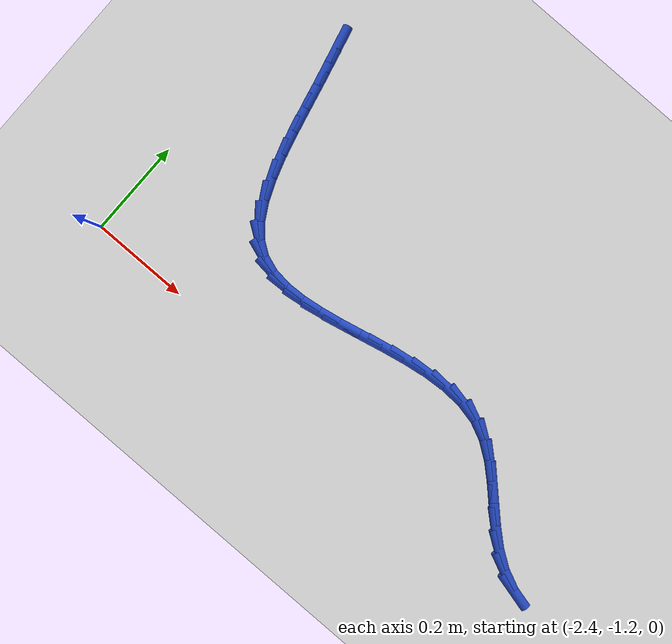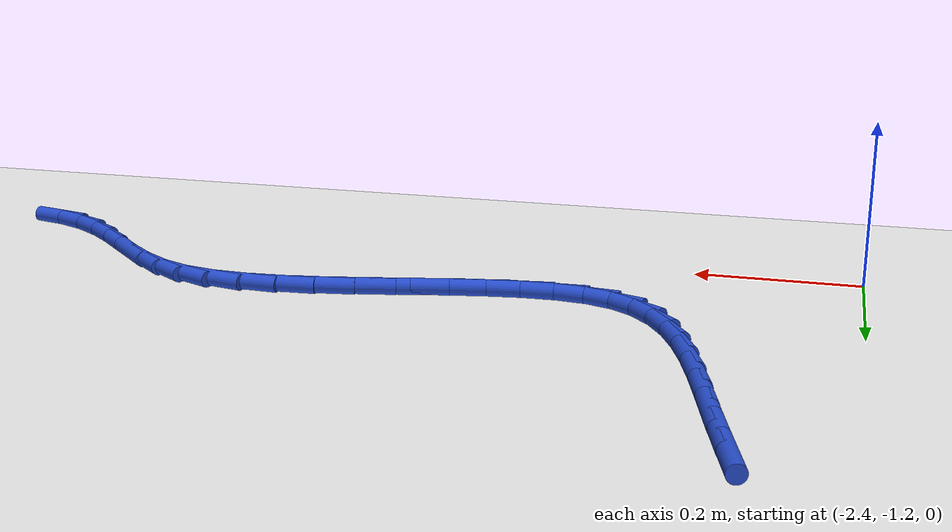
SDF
<sdf version="1.6">
 <world name="default">
  <model name="ground_plane">
   <static>1</static>
   <link name="link">
    <collision name="collision">
     <geometry><plane><normal>0 0 1</normal><size>100 100</size></plane></geometry>
     <surface><friction><ode><mu>100</mu><mu2>50</mu2></ode></friction></surface>
    </collision>
    <visual name="visual">
     <cast_shadows>0</cast_shadows>
     <geometry><plane><normal>0 0 1</normal><size>100 100</size></plane></geometry>
     <material>
      <script><uri>file://media/materials/scripts/gazebo.material</uri><name>Gazebo/WhiteGlow</name></script>
     </material>
    </visual>
   </link>
  </model>
  <model name="line">
   <link name="link_104">
    <pose>-2.280956479653316 -0.6336706878231295 0.01 0 1.57 -1.330989758760254</pose>
    <collision name="collision">
     <geometry><cylinder><radius>0.01</radius><length>0.08</length></cylinder></geometry>
    </collision>
    <visual name="visual">
     <material>
      <script><name>Gazebo/Blue</name><uri>file://media/materials/scripts/gazebo.material</uri></script>
     </material>
     <geometry><cylinder><radius>0.01</radius><length>0.08</length></cylinder></geometry>
    </visual>
   </link>
   <link name="link_105">
    <pose>-2.269371612398746 -0.681050291412001 0.01 0 1.57 -1.3387917648245278</pose>
    <collision name="collision">
     <geometry><cylinder><radius>0.01</radius><length>0.08</length></cylinder></geometry>
    </collision>
    <visual name="visual">
     <material>
      <script><name>Gazebo/Blue</name><uri>file://media/materials/scripts/gazebo.material</uri></script>
     </material>
     <geometry><cylinder><radius>0.01</radius><length>0.08</length></cylinder></geometry>
    </visual>
   </link>
   <link name="link_106">
    <pose>-2.258001896406491 -0.7291742774976275 0.01 0 1.57 -1.3463048233892345</pose>
    <collision name="collision">
     <geometry><cylinder><radius>0.01</radius><length>0.08</length></cylinder></geometry>
    </collision>
    <visual name="visual">
     <material>
      <script><name>Gazebo/Blue</name><uri>file://media/materials/scripts/gazebo.material</uri></script>
     </material>
     <geometry><cylinder><radius>0.01</radius><length>0.08</length></cylinder></geometry>
    </visual>
   </link>
   <link name="link_107">
    <pose>-2.2468799708586453 -0.7778819546220764 0.01 0 1.57 -1.338593225642721</pose>
    <collision name="collision">
     <geometry><cylinder><radius>0.01</radius><length>0.08</length></cylinder></geometry>
    </collision>
    <visual name="visual">
     <material>
      <script><name>Gazebo/Blue</name><uri>file://media/materials/scripts/gazebo.material</uri></script>
     </material>
     <geometry><cylinder><radius>0.01</radius><length>0.08</length></cylinder></geometry>
    </visual>
   </link>
   <link name="link_108">
    <pose>-2.235462562097918 -0.8261649660813665 0.01 0 1.57 -1.3106265633122132</pose>
    <collision name="collision">
     <geometry><cylinder><radius>0.01</radius><length>0.08</length></cylinder></geometry>
    </collision>
    <visual name="visual">
     <material>
      <script><name>Gazebo/Blue</name><uri>file://media/materials/scripts/gazebo.material</uri></script>
     </material>
     <geometry><cylinder><radius>0.01</radius><length>0.08</length></cylinder></geometry>
    </visual>
   </link>
   <link name="link_109">
    <pose>-2.2230515933239285 -0.8727871060328964 0.01 0 1.57 -1.2588008203436436</pose>
    <collision name="collision">
     <geometry><cylinder><radius>0.01</radius><length>0.08</length></cylinder></geometry>
    </collision>
    <visual name="visual">
     <material>
      <script><name>Gazebo/Blue</name><uri>file://media/materials/scripts/gazebo.material</uri></script>
     </material>
     <geometry><cylinder><radius>0.01</radius><length>0.08</length></cylinder></geometry>
    </visual>
   </link>
   <link name="link_110">
    <pose>-2.2089489856989513 -0.9165121656353641 0.01 0 1.57 -1.1760965838683635</pose>
    <collision name="collision">
     <geometry><cylinder><radius>0.01</radius><length>0.08</length></cylinder></geometry>
    </collision>
    <visual name="visual">
     <material>
      <script><name>Gazebo/Blue</name><uri>file://media/materials/scripts/gazebo.material</uri></script>
     </material>
     <geometry><cylinder><radius>0.01</radius><length>0.08</length></cylinder></geometry>
    </visual>
   </link>
   <link name="link_111">
    <pose>-2.192456660385258 -0.9561039360474705 0.01 0 1.57 -1.0511098662197789</pose>
    <collision name="collision">
     <geometry><cylinder><radius>0.01</radius><length>0.08</length></cylinder></geometry>
    </collision>
    <visual name="visual">
     <material>
      <script><name>Gazebo/Blue</name><uri>file://media/materials/scripts/gazebo.material</uri></script>
     </material>
     <geometry><cylinder><radius>0.01</radius><length>0.08</length></cylinder></geometry>
    </visual>
   </link>
   <link name="link_112">
    <pose>-2.172876538545122 -0.9903262084279151 0.01 0 1.57 -0.8685787707717372</pose>
    <collision name="collision">
     <geometry><cylinder><radius>0.01</radius><length>0.08</length></cylinder></geometry>
    </collision>
    <visual name="visual">
     <material>
      <script><name>Gazebo/Blue</name><uri>file://media/materials/scripts/gazebo.material</uri></script>
     </material>
     <geometry><cylinder><radius>0.01</radius><length>0.08</length></cylinder></geometry>
    </visual>
   </link>
   <link name="link_113">
    <pose>-2.149510541340815 -1.017942773935398 0.01 0 1.57 -0.6175638595653127</pose>
    <collision name="collision">
     <geometry><cylinder><radius>0.01</radius><length>0.08</length></cylinder></geometry>
    </collision>
    <visual name="visual">
     <material>
      <script><name>Gazebo/Blue</name><uri>file://media/materials/scripts/gazebo.material</uri></script>
     </material>
     <geometry><cylinder><radius>0.01</radius><length>0.08</length></cylinder></geometry>
    </visual>
   </link>
   <link name="link_114">
    <pose>-2.1216626920767205 -1.0377213642871062 0.01 0 1.57 -0.3378877770017698</pose>
    <collision name="collision">
     <geometry><cylinder><radius>0.01</radius><length>0.08</length></cylinder></geometry>
    </collision>
    <visual name="visual">
     <material>
      <script><name>Gazebo/Blue</name><uri>file://media/materials/scripts/gazebo.material</uri></script>
     </material>
     <geometry><cylinder><radius>0.01</radius><length>0.08</length></cylinder></geometry>
    </visual>
   </link>
   <link name="link_115">
    <pose>-2.089039378438921 -1.0491839610542466 0.01 0 1.57 -0.11662721067635441</pose>
    <collision name="collision">
     <geometry><cylinder><radius>0.01</radius><length>0.08</length></cylinder></geometry>
    </collision>
    <visual name="visual">
     <material>
      <script><name>Gazebo/Blue</name><uri>file://media/materials/scripts/gazebo.material</uri></script>
     </material>
     <geometry><cylinder><radius>0.01</radius><length>0.08</length></cylinder></geometry>
    </visual>
   </link>
   <link name="link_116">
    <pose>-2.052224334593791 -1.0534971706425698 0.01 0 1.57 0.03602853137515747</pose>
    <collision name="collision">
     <geometry><cylinder><radius>0.01</radius><length>0.08</length></cylinder></geometry>
    </collision>
    <visual name="visual">
     <material>
      <script><name>Gazebo/Blue</name><uri>file://media/materials/scripts/gazebo.material</uri></script>
     </material>
     <geometry><cylinder><radius>0.01</radius><length>0.08</length></cylinder></geometry>
    </visual>
   </link>
   <link name="link_117">
    <pose>-2.0119169095692424 -1.0520443246363054 0.01 0 1.57 0.13457626433097916</pose>
    <collision name="collision">
     <geometry><cylinder><radius>0.01</radius><length>0.08</length></cylinder></geometry>
    </collision>
    <visual name="visual">
     <material>
      <script><name>Gazebo/Blue</name><uri>file://media/materials/scripts/gazebo.material</uri></script>
     </material>
     <geometry><cylinder><radius>0.01</radius><length>0.08</length></cylinder></geometry>
    </visual>
   </link>
   <link name="link_118">
    <pose>-1.9688164523931833 -1.046208754619682 0.01 0 1.57 0.19305443082614746</pose>
    <collision name="collision">
     <geometry><cylinder><radius>0.01</radius><length>0.08</length></cylinder></geometry>
    </collision>
    <visual name="visual">
     <material>
      <script><name>Gazebo/Blue</name><uri>file://media/materials/scripts/gazebo.material</uri></script>
     </material>
     <geometry><cylinder><radius>0.01</radius><length>0.08</length></cylinder></geometry>
    </visual>
   </link>
   <link name="link_119">
    <pose>-1.9236223120935274 -1.03737379217693 0.01 0 1.57 0.22067317796100505</pose>
    <collision name="collision">
     <geometry><cylinder><radius>0.01</radius><length>0.08</length></cylinder></geometry>
    </collision>
    <visual name="visual">
     <material>
      <script><name>Gazebo/Blue</name><uri>file://media/materials/scripts/gazebo.material</uri></script>
     </material>
     <geometry><cylinder><radius>0.01</radius><length>0.08</length></cylinder></geometry>
    </visual>
   </link>
   <link name="link_120">
    <pose>-1.8770338376981832 -1.0269227688922773 0.01 0 1.57 0.2222195860648605</pose>
    <collision name="collision">
     <geometry><cylinder><radius>0.01</radius><length>0.08</length></cylinder></geometry>
    </collision>
    <visual name="visual">
     <material>
      <script><name>Gazebo/Blue</name><uri>file://media/materials/scripts/gazebo.material</uri></script>
     </material>
     <geometry><cylinder><radius>0.01</radius><length>0.08</length></cylinder></geometry>
    </visual>
   </link>
   <link name="link_121">
    <pose>-1.8297503782350637 -1.016239016349954 0.01 0 1.57 0.1989677853399161</pose>
    <collision name="collision">
     <geometry><cylinder><radius>0.01</radius><length>0.08</length></cylinder></geometry>
    </collision>
    <visual name="visual">
     <material>
      <script><name>Gazebo/Blue</name><uri>file://media/materials/scripts/gazebo.material</uri></script>
     </material>
     <geometry><cylinder><radius>0.01</radius><length>0.08</length></cylinder></geometry>
    </visual>
   </link>
   <link name="link_122">
    <pose>-1.7824712827320792 -1.0067058661341894 0.01 0 1.57 0.1491609996956223</pose>
    <collision name="collision">
     <geometry><cylinder><radius>0.01</radius><length>0.08</length></cylinder></geometry>
    </collision>
    <visual name="visual">
     <material>
      <script><name>Gazebo/Blue</name><uri>file://media/materials/scripts/gazebo.material</uri></script>
     </material>
     <geometry><cylinder><radius>0.01</radius><length>0.08</length></cylinder></geometry>
    </visual>
   </link>
   <link name="link_123">
    <pose>-1.7358959002171412 -0.9997066498292128 0.01 0 1.57 0.06812096591878085</pose>
    <collision name="collision">
     <geometry><cylinder><radius>0.01</radius><length>0.08</length></cylinder></geometry>
    </collision>
    <visual name="visual">
     <material>
      <script><name>Gazebo/Blue</name><uri>file://media/materials/scripts/gazebo.material</uri></script>
     </material>
     <geometry><cylinder><radius>0.01</radius><length>0.08</length></cylinder></geometry>
    </visual>
   </link>
   <link name="link_124">
    <pose>-1.6907235797181601 -0.9966246990192529 0.01 0 1.57 -0.051467183981384834</pose>
    <collision name="collision">
     <geometry><cylinder><radius>0.01</radius><length>0.08</length></cylinder></geometry>
    </collision>
    <visual name="visual">
     <material>
      <script><name>Gazebo/Blue</name><uri>file://media/materials/scripts/gazebo.material</uri></script>
     </material>
     <geometry><cylinder><radius>0.01</radius><length>0.08</length></cylinder></geometry>
    </visual>
   </link>
   <link name="link_125">
    <pose>-1.647653670263047 -0.9988433452885391 0.01 0 1.57 -0.21758240164894757</pose>
    <collision name="collision">
     <geometry><cylinder><radius>0.01</radius><length>0.08</length></cylinder></geometry>
    </collision>
    <visual name="visual">
     <material>
      <script><name>Gazebo/Blue</name><uri>file://media/materials/scripts/gazebo.material</uri></script>
     </material>
     <geometry><cylinder><radius>0.01</radius><length>0.08</length></cylinder></geometry>
    </visual>
   </link>
   <link name="link_126">
    <pose>-1.6073855208797125 -1.0077459202213013 0.01 0 1.57 -0.4271077871699465</pose>
    <collision name="collision">
     <geometry><cylinder><radius>0.01</radius><length>0.08</length></cylinder></geometry>
    </collision>
    <visual name="visual">
     <material>
      <script><name>Gazebo/Blue</name><uri>file://media/materials/scripts/gazebo.material</uri></script>
     </material>
     <geometry><cylinder><radius>0.01</radius><length>0.08</length></cylinder></geometry>
    </visual>
   </link>
   <link name="link_127">
    <pose>-1.570524352853285 -1.0245223633551537 0.01 0 1.57 -0.6104562734050282</pose>
    <collision name="collision">
     <geometry><cylinder><radius>0.01</radius><length>0.08</length></cylinder></geometry>
    </collision>
    <visual name="visual">
     <material>
      <script><name>Gazebo/Blue</name><uri>file://media/materials/scripts/gazebo.material</uri></script>
     </material>
     <geometry><cylinder><radius>0.01</radius><length>0.08</length></cylinder></geometry>
    </visual>
   </link>
   <link name="link_128">
    <pose>-1.5366372618827264 -1.0482297124304867 0.01 0 1.57 -0.7255330549057654</pose>
    <collision name="collision">
     <geometry><cylinder><radius>0.01</radius><length>0.08</length></cylinder></geometry>
    </collision>
    <visual name="visual">
     <material>
      <script><name>Gazebo/Blue</name><uri>file://media/materials/scripts/gazebo.material</uri></script>
     </material>
     <geometry><cylinder><radius>0.01</radius><length>0.08</length></cylinder></geometry>
    </visual>
   </link>
   <link name="link_129">
    <pose>-1.5046472999977838 -1.0766017723169647 0.01 0 1.57 -0.7784769619934139</pose>
    <collision name="collision">
     <geometry><cylinder><radius>0.01</radius><length>0.08</length></cylinder></geometry>
    </collision>
    <visual name="visual">
     <material>
      <script><name>Gazebo/Blue</name><uri>file://media/materials/scripts/gazebo.material</uri></script>
     </material>
     <geometry><cylinder><radius>0.01</radius><length>0.08</length></cylinder></geometry>
    </visual>
   </link>
   <link name="link_130">
    <pose>-1.4734678835046213 -1.1073525506146111 0.01 0 1.57 -0.7755756749567662</pose>
    <collision name="collision">
     <geometry><cylinder><radius>0.01</radius><length>0.08</length></cylinder></geometry>
    </collision>
    <visual name="visual">
     <material>
      <script><name>Gazebo/Blue</name><uri>file://media/materials/scripts/gazebo.material</uri></script>
     </material>
     <geometry><cylinder><radius>0.01</radius><length>0.08</length></cylinder></geometry>
    </visual>
   </link>
   <link name="link_131">
    <pose>-1.4420124287094018 -1.1381960549234493 0.01 0 1.57 -0.7176971165132054</pose>
    <collision name="collision">
     <geometry><cylinder><radius>0.01</radius><length>0.08</length></cylinder></geometry>
    </collision>
    <visual name="visual">
     <material>
      <script><name>Gazebo/Blue</name><uri>file://media/materials/scripts/gazebo.material</uri></script>
     </material>
     <geometry><cylinder><radius>0.01</radius><length>0.08</length></cylinder></geometry>
    </visual>
   </link>
   <link name="link_132">
    <pose>-1.4091943519182906 -1.166846292843501 0.01 0 1.57 -0.6008364881375451</pose>
    <collision name="collision">
     <geometry><cylinder><radius>0.01</radius><length>0.08</length></cylinder></geometry>
    </collision>
    <visual name="visual">
     <material>
      <script><name>Gazebo/Blue</name><uri>file://media/materials/scripts/gazebo.material</uri></script>
     </material>
     <geometry><cylinder><radius>0.01</radius><length>0.08</length></cylinder></geometry>
    </visual>
   </link>
   <link name="link_133">
    <pose>-1.37392706943745 -1.19101727197479 0.01 0 1.57 -0.4269663620989831</pose>
    <collision name="collision">
     <geometry><cylinder><radius>0.01</radius><length>0.08</length></cylinder></geometry>
    </collision>
    <visual name="visual">
     <material>
      <script><name>Gazebo/Blue</name><uri>file://media/materials/scripts/gazebo.material</uri></script>
     </material>
     <geometry><cylinder><radius>0.01</radius><length>0.08</length></cylinder></geometry>
    </visual>
   </link>
   <link name="link_134">
    <pose>-1.3352680003010817 -1.2086053856082144 0.01 0 1.57 -0.2506003394201698</pose>
    <collision name="collision">
     <geometry><cylinder><radius>0.01</radius><length>0.08</length></cylinder></geometry>
    </collision>
    <visual name="visual">
     <material>
      <script><name>Gazebo/Blue</name><uri>file://media/materials/scripts/gazebo.material</uri></script>
     </material>
     <geometry><cylinder><radius>0.01</radius><length>0.08</length></cylinder></geometry>
    </visual>
   </link>
  </model>
 </world>
</sdf>
